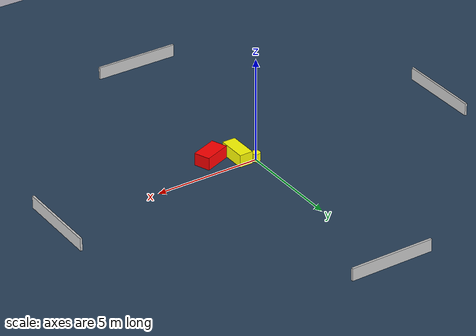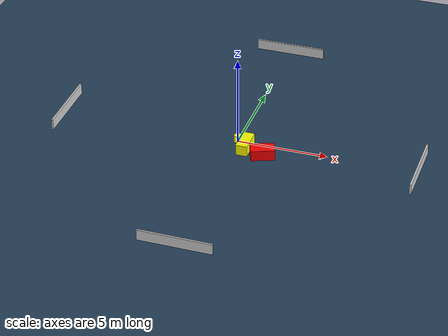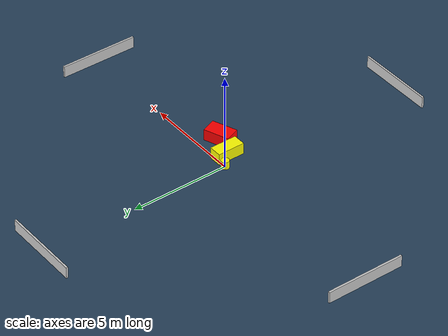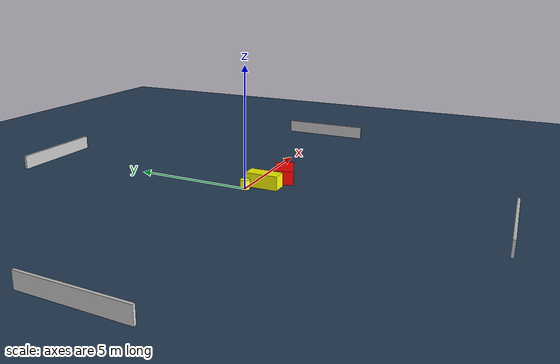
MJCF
<?xml version="1.0" ?>
<mujoco model="generated_environment">
  <option timestep="0.01" integrator="RK4" cone="elliptic"/>
  <default>
    <geom density="1"/>
  </default>
  <asset>
    <texture builtin="gradient" height="3072" name="skybox" rgb1="0.3 0.5 0.7" rgb2="0 0 0" type="skybox" width="512"/>
    <texture builtin="checker" height="300" name="groundplane" rgb1="0.2 0.3 0.4" rgb2="0.1 0.2 0.3" type="2d" width="300"/>
    <material name="groundplane" reflectance="0.2" texrepeat="5 5" texture="groundplane"/>
  </asset>
  <worldbody>
    <light dir="0 0 -1" directional="true" pos="0 0 1.5"/>
    <geom condim="3" friction="0.5 0.005 0.001" material="groundplane" name="floor" pos="0 0 0" size="0 0 0.05" type="plane"/>
    <body name="walls">
      <geom name="wall_1" condim="4" pos="-10.0 0.0 0.3" rgba="0.800000011920929 0.800000011920929 0.800000011920929 1.0" size="0.05 2.0 0.3" type="box"/>
      <geom name="wall_2" condim="4" pos="10.0 0.0 0.3" rgba="0.800000011920929 0.800000011920929 0.800000011920929 1.0" size="0.05 2.0 0.3" type="box"/>
      <geom name="wall_3" condim="4" pos="0.0 -10.0 0.3" rgba="0.800000011920929 0.800000011920929 0.800000011920929 1.0" size="2.0 0.05 0.3" type="box"/>
      <geom name="wall_4" condim="4" pos="0.0 10.0 0.3" rgba="0.800000011920929 0.800000011920929 0.800000011920929 1.0" size="2.0 0.05 0.3" type="box"/>
    </body>
    <body name="robot">
      <joint name="joint_x" type="slide" pos="0 0 0" axis="1 0 0"/>
      <joint name="joint_y" type="slide" pos="0 0 0" axis="0 1 0"/>
      <geom name="robot" type="cylinder" pos="0.0 0.0 0.2" size="0.2 0.2 0.0" mass="5.0" friction="1.0 0.005 0.0001" condim="4" rgba="1.0 1.0 0.0 1.0"/>
    </body>
    <body name="obstacle_1_movable">
      <geom name="obstacle_1_movable" condim="4" pos="0.6011124700335745 -0.5669250561289388 0.3" euler="0 0 90.2993193845773" friction="0.0 0.005 0.001" rgba="1.0 1.0 0.0 1.0" size="0.697719412381012 0.320338688972637 0.3" type="box" mass="0.1"/>
      <joint type="free"/>
    </body>
    <body name="obstacle_2_static">
      <geom name="obstacle_2_static" condim="4" pos="1.7100879828732467 -1.013421796588259 0.3" euler="0 0 291.16884991283945" friction="0.0 0.005 0.001" rgba="1.0 0.0 0.0 1.0" size="0.38715790616837126 0.6518612032967825 0.3" type="box"/>
    </body>
  </worldbody>
  <actuator>
    <motor name="actuator_x" joint="joint_x" gear="1" ctrlrange="-1 1"/>
    <motor name="actuator_y" joint="joint_y" gear="1" ctrlrange="-1 1"/>
  </actuator>
</mujoco>
